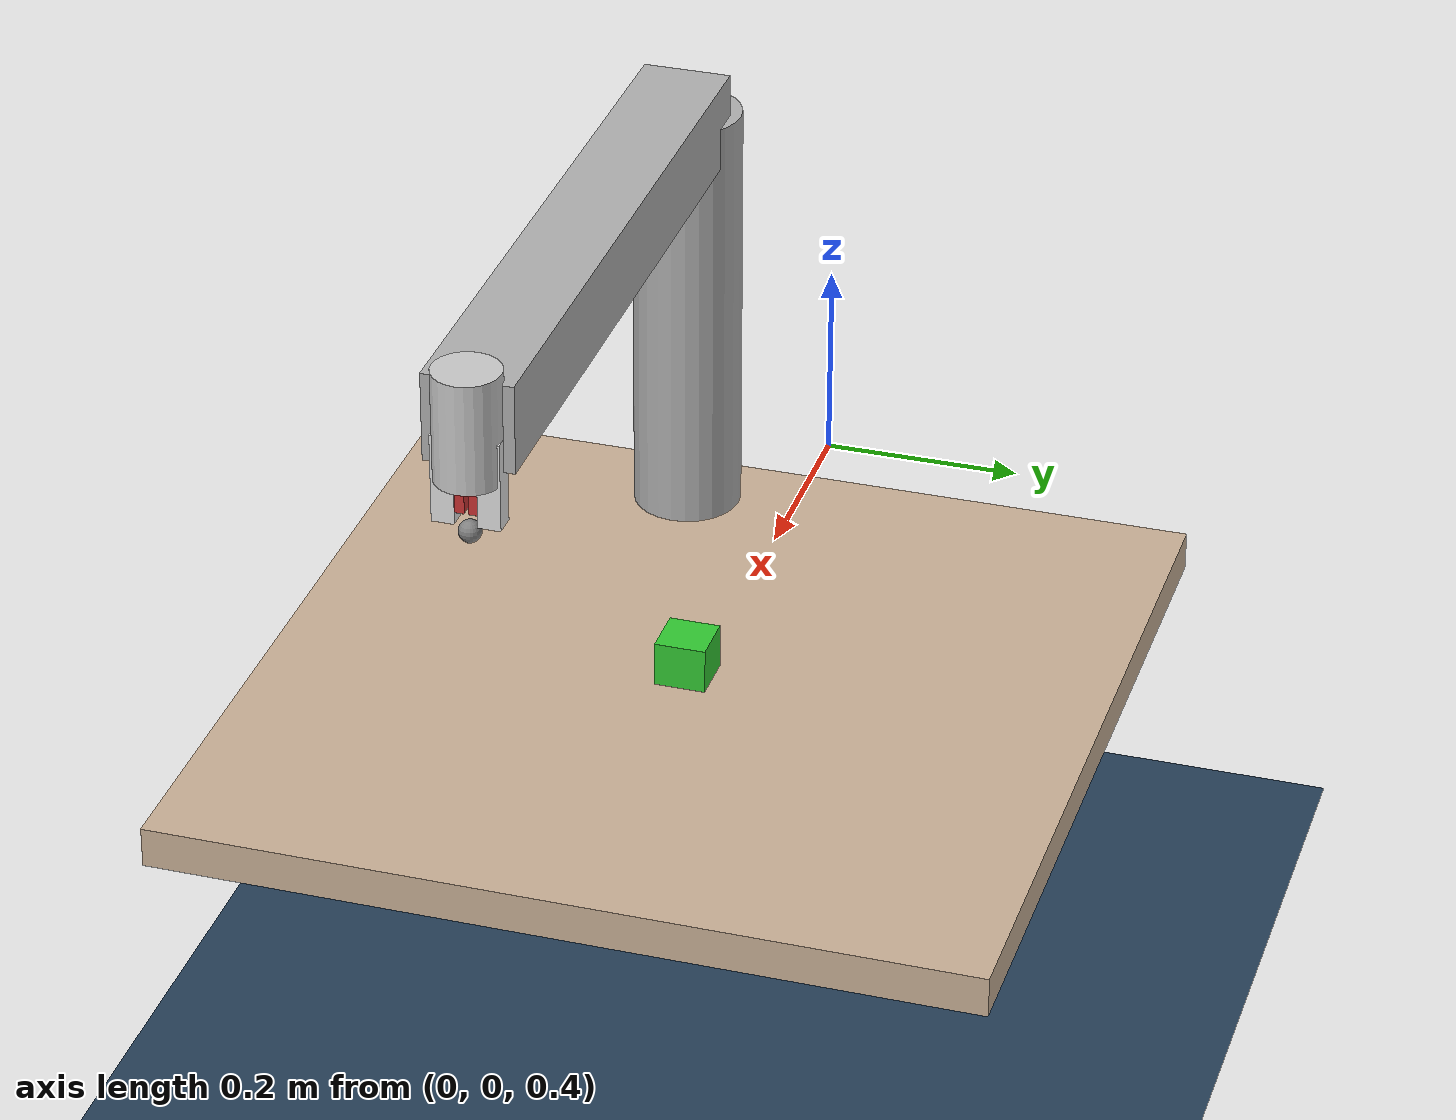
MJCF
<mujoco model="panda tactile grasping">
  <compiler angle="radian" />

  <option timestep="0.002" gravity="0 0 -9.81" />

  <default>
    <joint armature="0.1" damping="1" limited="true" />
    <geom contype="1" conaffinity="1" friction="1 0.5 0.5" />
    <position ctrllimited="true" />
  </default>

  <asset>
    <texture type="skybox" builtin="gradient" rgb1="0.3 0.5 0.7" rgb2="0 0 0" width="512" height="3072"/>
    <texture type="2d" name="groundplane" builtin="checker" mark="edge" rgb1="0.2 0.3 0.4" rgb2="0.1 0.2 0.3"
             markrgb="0.8 0.8 0.8" width="300" height="300"/>
    <material name="groundplane" texture="groundplane" texuniform="true" texrepeat="5 5" reflectance="0.2"/>
    <material name="table" rgba="0.8 0.7 0.6 1" />
    <material name="gripper" rgba="0.9 0.9 0.9 1" />
    <material name="cube" rgba="0.2 0.8 0.2 1" />
  </asset>

  <worldbody>
    <!-- Ground -->
    <geom name="floor" size="0 0 0.05" type="plane" material="groundplane"/>

    <!-- Table -->
    <body name="table" pos="0.5 0 0.4">
      <geom name="table_top" type="box" size="0.4 0.4 0.02" material="table" />
    </body>

    <!-- Simple 2-DOF arm for easier control -->
    <body name="arm_base" pos="0.5 0 0.82">
      <!-- Vertical link -->
      <geom name="link0" type="cylinder" size="0.05 0.2" rgba="0.7 0.7 0.7 1" />
      <joint name="arm_lift" type="slide" axis="0 0 1" range="-0.3 0.3" />

      <body name="arm_link" pos="0 0 0.2">
        <!-- Horizontal link -->
        <geom name="link1" type="box" size="0.3 0.04 0.04" pos="0.3 0 0" rgba="0.7 0.7 0.7 1" />
        <joint name="arm_extend" type="slide" axis="1 0 0" range="-0.2 0.2" />

        <!-- Gripper base -->
        <body name="gripper_base" pos="0.6 0 0">
          <geom name="gripper_mount" type="cylinder" size="0.03 0.05" rgba="0.8 0.8 0.8 1" />
          <joint name="gripper_rotate" type="hinge" axis="0 0 1" range="-1.57 1.57" />

          <!-- Left finger -->
          <body name="left_finger" pos="0 0.02 -0.05">
            <geom name="left_finger_geom" type="box" size="0.01 0.01 0.04" material="gripper" />
            <joint name="left_finger_joint" type="slide" axis="0 1 0" range="0 0.04" />
            <!-- Tactile pad with proper collision -->
            <geom name="left_finger_pad" type="box" size="0.008 0.008 0.03" pos="0 -0.01 0"
                  rgba="0.8 0.2 0.2 1" contype="1" conaffinity="1" />
          </body>

          <!-- Right finger -->
          <body name="right_finger" pos="0 -0.02 -0.05">
            <geom name="right_finger_geom" type="box" size="0.01 0.01 0.04" material="gripper" />
            <joint name="right_finger_joint" type="slide" axis="0 -1 0" range="0 0.04" />
            <!-- Tactile pad with proper collision -->
            <geom name="right_finger_pad" type="box" size="0.008 0.008 0.03" pos="0 0.01 0"
                  rgba="0.8 0.2 0.2 1" contype="1" conaffinity="1" />
          </body>

          <!-- End effector site -->
          <site name="gripper" pos="0 0 -0.1" size="0.01" />
        </body>
      </body>
    </body>

    <!-- Cube to grasp -->
    <body name="cube" pos="0.5 0 0.44">
      <freejoint />
      <geom name="cube" type="box" size="0.025 0.025 0.025" material="cube"
            contype="1" conaffinity="1" friction="1 0.5 0.5" />
    </body>
  </worldbody>

  <actuator>
    <!-- Arm actuators -->
    <position name="arm_lift_act" joint="arm_lift" kp="500" ctrlrange="-0.3 0.3" />
    <position name="arm_extend_act" joint="arm_extend" kp="500" ctrlrange="-0.2 0.2" />
    <position name="gripper_rotate_act" joint="gripper_rotate" kp="100" ctrlrange="-1.57 1.57" />

    <!-- Gripper actuators -->
    <position name="left_finger_act" joint="left_finger_joint" kp="100" ctrlrange="0 0.04" />
    <position name="right_finger_act" joint="right_finger_joint" kp="100" ctrlrange="0 0.04" />
  </actuator>

  <equality>
    <!-- Couple the two fingers -->
    <joint joint1="left_finger_joint" joint2="right_finger_joint" polycoef="0 1 0 0 0" />
  </equality>
</mujoco>
